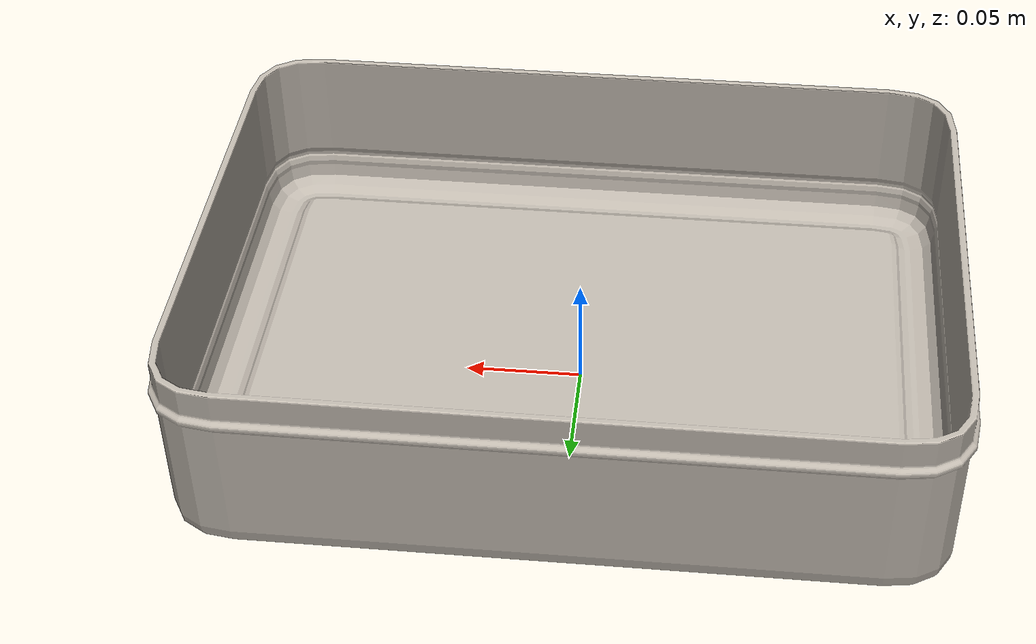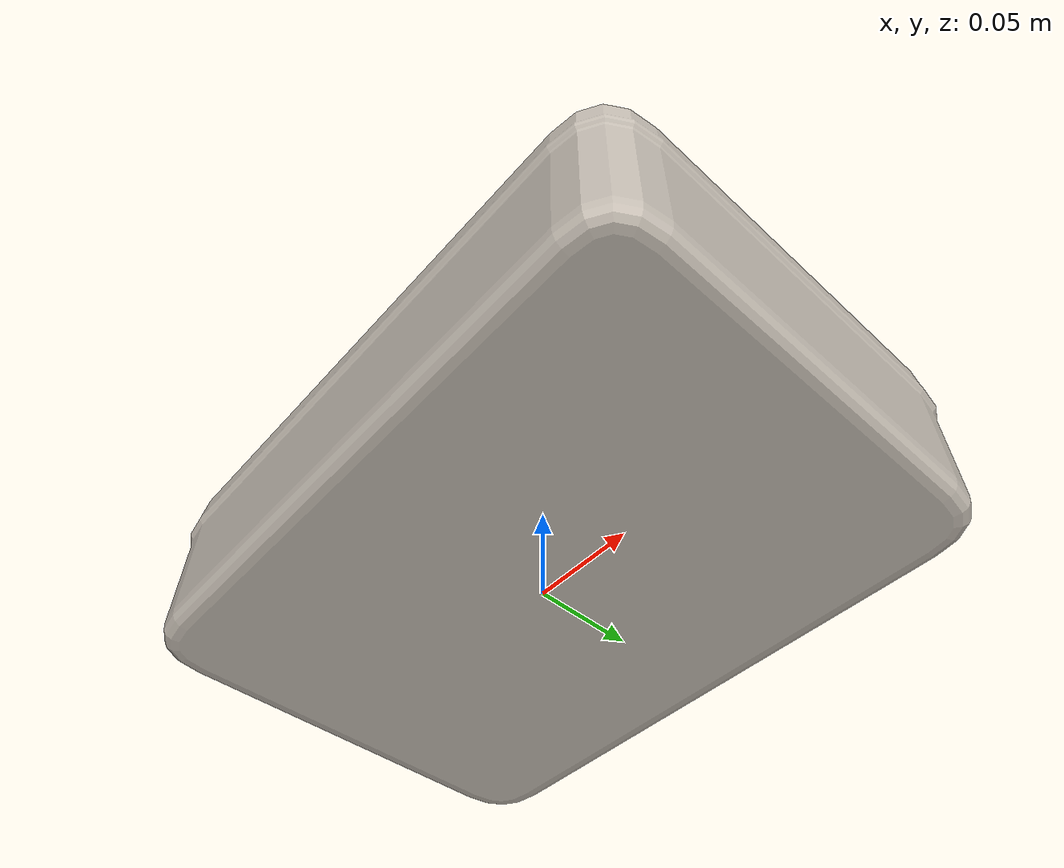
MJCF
<mujoco model="body">
  <default>
    <default class="visual">
      <geom group="2" type="mesh" contype="0" conaffinity="0" density="0" />
    </default>
    <default class="collision">
      <geom group="3" type="mesh" density="100" friction="0.8 0.04 0.004" solref="0.004 1" solimp="0.998 0.998 0.001" condim="6" priority="1" />
    </default>
  </default>
  <asset>
    <texture type="2d" name="yellw" file="yellw.png" />
    <material name="yellw" texture="yellw" specular="0.4000000000000001" shininess="0.001" />
    <mesh file="body.obj" />
    <mesh file="body_collision_0.obj" />
    <mesh file="body_collision_1.obj" />
    <mesh file="body_collision_2.obj" />
    <mesh file="body_collision_3.obj" />
    <mesh file="body_collision_4.obj" />
    <mesh file="body_collision_5.obj" />
    <mesh file="body_collision_6.obj" />
    <mesh file="body_collision_7.obj" />
    <mesh file="body_collision_8.obj" />
    <mesh file="body_collision_9.obj" />
    <mesh file="body_collision_10.obj" />
    <mesh file="body_collision_11.obj" />
    <mesh file="body_collision_12.obj" />
    <mesh file="body_collision_13.obj" />
    <mesh file="body_collision_14.obj" />
  </asset>
  <worldbody>
    <body name="body">
      <geom material="yellw" mesh="body" class="visual" />
      <geom name="body_collision_0_visual" mesh="body_collision_0" class="visual" group="3" rgba="0.559229353 0.110064195 0.412509902 0.65" />
      <geom name="body_collision_1_visual" mesh="body_collision_1" class="visual" group="3" rgba="0.478662402 0.071547707 0.734199353 0.65" />
      <geom name="body_collision_2_visual" mesh="body_collision_2" class="visual" group="3" rgba="0.678140423 0.862653556 0.100633124 0.65" />
      <geom name="body_collision_3_visual" mesh="body_collision_3" class="visual" group="3" rgba="0.391937363 0.259936019 0.450060588 0.65" />
      <geom name="body_collision_4_visual" mesh="body_collision_4" class="visual" group="3" rgba="0.514130238 0.776470522 0.668540496 0.65" />
      <geom name="body_collision_5_visual" mesh="body_collision_5" class="visual" group="3" rgba="0.176138256 0.571735391 0.022010909 0.65" />
      <geom name="body_collision_6_visual" mesh="body_collision_6" class="visual" group="3" rgba="0.682331381 0.339505615 0.018195663 0.65" />
      <geom name="body_collision_7_visual" mesh="body_collision_7" class="visual" group="3" rgba="0.995951041 0.229256499 0.641544188 0.65" />
      <geom name="body_collision_8_visual" mesh="body_collision_8" class="visual" group="3" rgba="0.562995033 0.803718783 0.562758880 0.65" />
      <geom name="body_collision_9_visual" mesh="body_collision_9" class="visual" group="3" rgba="0.403792452 0.930205352 0.256295326 0.65" />
      <geom name="body_collision_10_visual" mesh="body_collision_10" class="visual" group="3" rgba="0.181159446 0.818687452 0.425243601 0.65" />
      <geom name="body_collision_11_visual" mesh="body_collision_11" class="visual" group="3" rgba="0.529593963 0.631698536 0.923716640 0.65" />
      <geom name="body_collision_12_visual" mesh="body_collision_12" class="visual" group="3" rgba="0.592335628 0.422893872 0.779715531 0.65" />
      <geom name="body_collision_13_visual" mesh="body_collision_13" class="visual" group="3" rgba="0.103337407 0.234761138 0.437160482 0.65" />
      <geom name="body_collision_14_visual" mesh="body_collision_14" class="visual" group="3" rgba="0.412307931 0.850582223 0.019595705 0.65" />
      <geom mesh="body_collision_0" rgba="0.8 0.8 0.8 0" class="collision" />
      <geom mesh="body_collision_1" rgba="0.8 0.8 0.8 0" class="collision" />
      <geom mesh="body_collision_2" rgba="0.8 0.8 0.8 0" class="collision" />
      <geom mesh="body_collision_3" rgba="0.8 0.8 0.8 0" class="collision" />
      <geom mesh="body_collision_4" rgba="0.8 0.8 0.8 0" class="collision" />
      <geom mesh="body_collision_5" rgba="0.8 0.8 0.8 0" class="collision" />
      <geom mesh="body_collision_6" rgba="0.8 0.8 0.8 0" class="collision" />
      <geom mesh="body_collision_7" rgba="0.8 0.8 0.8 0" class="collision" />
      <geom mesh="body_collision_8" rgba="0.8 0.8 0.8 0" class="collision" />
      <geom mesh="body_collision_9" rgba="0.8 0.8 0.8 0" class="collision" />
      <geom mesh="body_collision_10" rgba="0.8 0.8 0.8 0" class="collision" />
      <geom mesh="body_collision_11" rgba="0.8 0.8 0.8 0" class="collision" />
      <geom mesh="body_collision_12" rgba="0.8 0.8 0.8 0" class="collision" />
      <geom mesh="body_collision_13" rgba="0.8 0.8 0.8 0" class="collision" />
      <geom mesh="body_collision_14" rgba="0.8 0.8 0.8 0" class="collision" />
    </body>
  </worldbody>
</mujoco>
